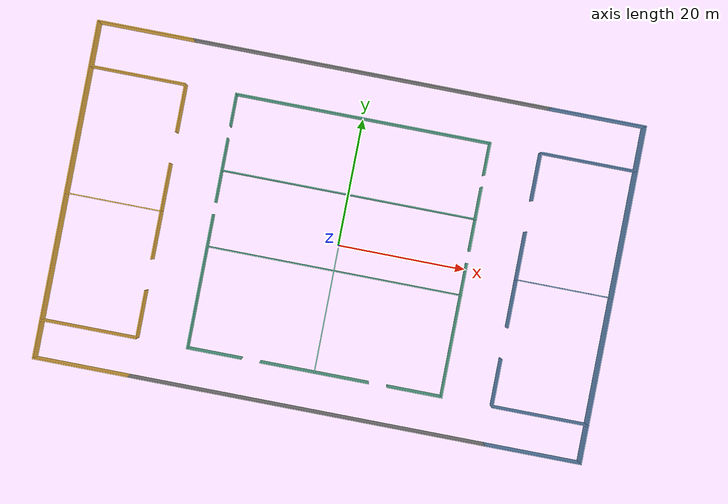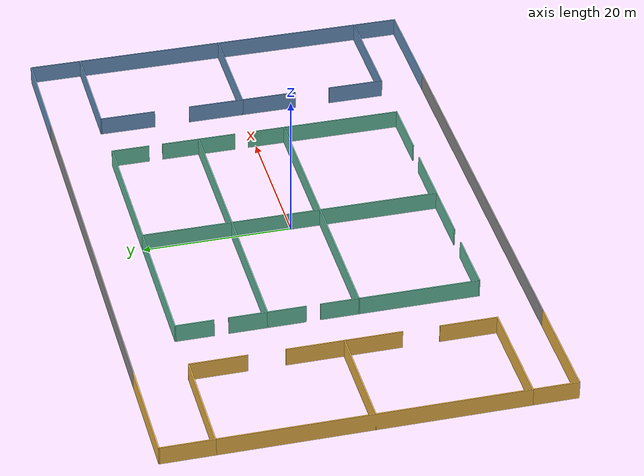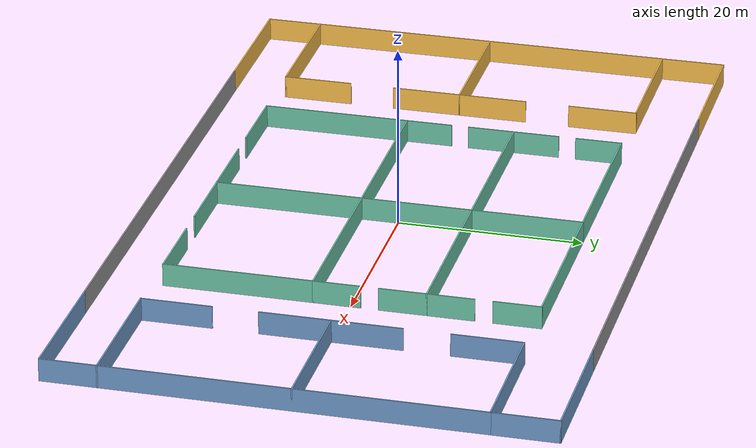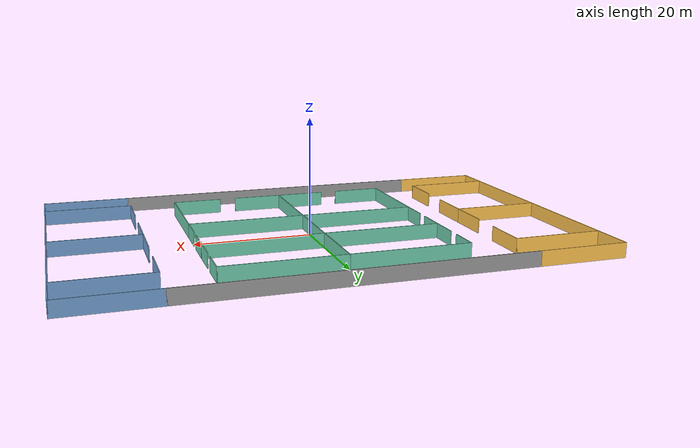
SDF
<?xml version='1.0'?>
<sdf version='1.7'>
  <model name='Lab'>
    <pose>0 0.5 0 0 -0 0</pose>
    <link name='Wall_0'>
      <collision name='Wall_0_Collision'>
        <geometry>
          <box>
            <size>40.15 0.15 2.5</size>
          </box>
        </geometry>
        <pose>0 0 1.25 0 -0 0</pose>
      </collision>
      <visual name='Wall_0_Visual'>
        <pose>0 0 1.25 0 -0 0</pose>
        <geometry>
          <box>
            <size>40.15 0.15 2.5</size>
          </box>
        </geometry>
        <material>
          <script>
            <uri>file://media/materials/scripts/gazebo.material</uri>
            <name>Gazebo/Grey</name>
          </script>
          <ambient>0.435294 0.796078 0.67451 1</ambient>
        </material>
        <meta>
          <layer>0</layer>
        </meta>
      </visual>
      <pose>0 -0.5 0 0 -0 1.5708</pose>
    </link>
    <link name='Wall_11'>
      <collision name='Wall_11_Collision'>
        <geometry>
          <box>
            <size>5.15 0.15 2.5</size>
          </box>
        </geometry>
        <pose>0 0 1.25 0 -0 0</pose>
      </collision>
      <visual name='Wall_11_Visual'>
        <pose>0 0 1.25 0 -0 0</pose>
        <geometry>
          <box>
            <size>5.15 0.15 2.5</size>
          </box>
        </geometry>
        <material>
          <script>
            <uri>file://media/materials/scripts/gazebo.material</uri>
            <name>Gazebo/Grey</name>
          </script>
          <ambient>0.435294 0.796078 0.67451 1</ambient>
        </material>
        <meta>
          <layer>0</layer>
        </meta>
      </visual>
      <pose>-20 17 0 0 -0 -1.5708</pose>
    </link>
    <link name='Wall_14'>
      <collision name='Wall_14_Collision'>
        <geometry>
          <box>
            <size>5.15 0.15 2.5</size>
          </box>
        </geometry>
        <pose>0 0 1.25 0 -0 0</pose>
      </collision>
      <visual name='Wall_14_Visual'>
        <pose>0 0 1.25 0 -0 0</pose>
        <geometry>
          <box>
            <size>5.15 0.15 2.5</size>
          </box>
        </geometry>
        <material>
          <script>
            <uri>file://media/materials/scripts/gazebo.material</uri>
            <name>Gazebo/Grey</name>
          </script>
          <ambient>0.435294 0.796078 0.67451 1</ambient>
        </material>
        <meta>
          <layer>0</layer>
        </meta>
      </visual>
      <pose>-20 10 0 0 -0 -1.5708</pose>
    </link>
    <link name='Wall_16'>
      <collision name='Wall_16_Collision'>
        <geometry>
          <box>
            <size>20.15 0.15 2.5</size>
          </box>
        </geometry>
        <pose>0 0 1.25 0 -0 0</pose>
      </collision>
      <visual name='Wall_16_Visual'>
        <pose>0 0 1.25 0 -0 0</pose>
        <geometry>
          <box>
            <size>20.15 0.15 2.5</size>
          </box>
        </geometry>
        <material>
          <script>
            <uri>file://media/materials/scripts/gazebo.material</uri>
            <name>Gazebo/Grey</name>
          </script>
          <ambient>0.435294 0.796078 0.67451 1</ambient>
        </material>
        <meta>
          <layer>0</layer>
        </meta>
      </visual>
      <pose>-10 7.5 0 0 -0 0</pose>
    </link>
    <link name='Wall_18'>
      <collision name='Wall_18_Collision'>
        <geometry>
          <box>
            <size>5.15 0.15 2.5</size>
          </box>
        </geometry>
        <pose>0 0 1.25 0 -0 0</pose>
      </collision>
      <visual name='Wall_18_Visual'>
        <pose>0 0 1.25 0 -0 0</pose>
        <geometry>
          <box>
            <size>5.15 0.15 2.5</size>
          </box>
        </geometry>
        <material>
          <script>
            <uri>file://media/materials/scripts/gazebo.material</uri>
            <name>Gazebo/Grey</name>
          </script>
          <ambient>0.435294 0.796078 0.67451 1</ambient>
        </material>
        <meta>
          <layer>0</layer>
        </meta>
      </visual>
      <pose>20 17 0 0 -0 -1.5708</pose>
    </link>
    <link name='Wall_20'>
      <collision name='Wall_20_Collision'>
        <geometry>
          <box>
            <size>5.15 0.15 2.5</size>
          </box>
        </geometry>
        <pose>0 0 1.25 0 -0 0</pose>
      </collision>
      <visual name='Wall_20_Visual'>
        <pose>0 0 1.25 0 -0 0</pose>
        <geometry>
          <box>
            <size>5.15 0.15 2.5</size>
          </box>
        </geometry>
        <material>
          <script>
            <uri>file://media/materials/scripts/gazebo.material</uri>
            <name>Gazebo/Grey</name>
          </script>
          <ambient>0.435294 0.796078 0.67451 1</ambient>
        </material>
        <meta>
          <layer>0</layer>
        </meta>
      </visual>
      <pose>20 10 0 0 -0 -1.5708</pose>
    </link>
    <link name='Wall_21'>
      <collision name='Wall_21_Collision'>
        <geometry>
          <box>
            <size>20.15 0.15 2.5</size>
          </box>
        </geometry>
        <pose>0 0 1.25 0 -0 0</pose>
      </collision>
      <visual name='Wall_21_Visual'>
        <pose>0 0 1.25 0 -0 0</pose>
        <geometry>
          <box>
            <size>20.15 0.15 2.5</size>
          </box>
        </geometry>
        <material>
          <script>
            <uri>file://media/materials/scripts/gazebo.material</uri>
            <name>Gazebo/Grey</name>
          </script>
          <ambient>0.435294 0.796078 0.67451 1</ambient>
        </material>
        <meta>
          <layer>0</layer>
        </meta>
      </visual>
      <pose>10 7.5 0 0 -0 3.14159</pose>
    </link>
    <link name='Wall_23'>
      <collision name='Wall_23_Collision'>
        <geometry>
          <box>
            <size>5.15 0.15 2.5</size>
          </box>
        </geometry>
        <pose>0 0 1.25 0 -0 0</pose>
      </collision>
      <visual name='Wall_23_Visual'>
        <pose>0 0 1.25 0 -0 0</pose>
        <geometry>
          <box>
            <size>5.15 0.15 2.5</size>
          </box>
        </geometry>
        <material>
          <script>
            <uri>file://media/materials/scripts/gazebo.material</uri>
            <name>Gazebo/Grey</name>
          </script>
          <ambient>0.435294 0.796078 0.67451 1</ambient>
        </material>
        <meta>
          <layer>0</layer>
        </meta>
      </visual>
      <pose>-20 5 0 0 -0 -1.5708</pose>
    </link>
    <link name='Wall_25'>
      <collision name='Wall_25_Collision'>
        <geometry>
          <box>
            <size>5.15 0.15 2.5</size>
          </box>
        </geometry>
        <pose>0 0 1.25 0 -0 0</pose>
      </collision>
      <visual name='Wall_25_Visual'>
        <pose>0 0 1.25 0 -0 0</pose>
        <geometry>
          <box>
            <size>5.15 0.15 2.5</size>
          </box>
        </geometry>
        <material>
          <script>
            <uri>file://media/materials/scripts/gazebo.material</uri>
            <name>Gazebo/Grey</name>
          </script>
          <ambient>0.435294 0.796078 0.67451 1</ambient>
        </material>
        <meta>
          <layer>0</layer>
        </meta>
      </visual>
      <pose>-20 -2 0 0 -0 -1.5708</pose>
    </link>
    <link name='Wall_26'>
      <collision name='Wall_26_Collision'>
        <geometry>
          <box>
            <size>20.1506 0.15 2.5</size>
          </box>
        </geometry>
        <pose>0 0 1.25 0 -0 0</pose>
      </collision>
      <visual name='Wall_26_Visual'>
        <pose>0 0 1.25 0 -0 0</pose>
        <geometry>
          <box>
            <size>20.1506 0.15 2.5</size>
          </box>
        </geometry>
        <material>
          <script>
            <uri>file://media/materials/scripts/gazebo.material</uri>
            <name>Gazebo/Grey</name>
          </script>
          <ambient>0.435294 0.796078 0.67451 1</ambient>
        </material>
        <meta>
          <layer>0</layer>
        </meta>
      </visual>
      <pose>-10 -4.5 0 0 -0 0</pose>
    </link>
    <link name='Wall_28'>
      <collision name='Wall_28_Collision'>
        <geometry>
          <box>
            <size>20.15 0.15 2.5</size>
          </box>
        </geometry>
        <pose>0 0 1.25 0 -0 0</pose>
      </collision>
      <visual name='Wall_28_Visual'>
        <pose>0 0 1.25 0 -0 0</pose>
        <geometry>
          <box>
            <size>20.15 0.15 2.5</size>
          </box>
        </geometry>
        <material>
          <script>
            <uri>file://media/materials/scripts/gazebo.material</uri>
            <name>Gazebo/Grey</name>
          </script>
          <ambient>0.435294 0.796078 0.67451 1</ambient>
        </material>
        <meta>
          <layer>0</layer>
        </meta>
      </visual>
      <pose>10 -4.5 0 0 -0 0</pose>
    </link>
    <link name='Wall_29'>
      <collision name='Wall_29_Collision'>
        <geometry>
          <box>
            <size>5.15 0.15 2.5</size>
          </box>
        </geometry>
        <pose>0 0 1.25 0 -0 0</pose>
      </collision>
      <visual name='Wall_29_Visual'>
        <pose>0 0 1.25 0 -0 0</pose>
        <geometry>
          <box>
            <size>5.15 0.15 2.5</size>
          </box>
        </geometry>
        <material>
          <script>
            <uri>file://media/materials/scripts/gazebo.material</uri>
            <name>Gazebo/Grey</name>
          </script>
          <ambient>0.435294 0.796078 0.67451 1</ambient>
        </material>
        <meta>
          <layer>0</layer>
        </meta>
      </visual>
      <pose>20 -2 0 0 -0 1.5708</pose>
    </link>
    <link name='Wall_31'>
      <collision name='Wall_31_Collision'>
        <geometry>
          <box>
            <size>5.15 0.15 2.5</size>
          </box>
        </geometry>
        <pose>0 0 1.25 0 -0 0</pose>
      </collision>
      <visual name='Wall_31_Visual'>
        <pose>0 0 1.25 0 -0 0</pose>
        <geometry>
          <box>
            <size>5.15 0.15 2.5</size>
          </box>
        </geometry>
        <material>
          <script>
            <uri>file://media/materials/scripts/gazebo.material</uri>
            <name>Gazebo/Grey</name>
          </script>
          <ambient>0.435294 0.796078 0.67451 1</ambient>
        </material>
        <meta>
          <layer>0</layer>
        </meta>
      </visual>
      <pose>20 5 0 0 -0 1.5708</pose>
    </link>
    <link name='Wall_33'>
      <collision name='Wall_33_Collision'>
        <geometry>
          <box>
            <size>16.15 0.15 2.5</size>
          </box>
        </geometry>
        <pose>0 0 1.25 0 -0 0</pose>
      </collision>
      <visual name='Wall_33_Visual'>
        <pose>0 0 1.25 0 -0 0</pose>
        <geometry>
          <box>
            <size>16.15 0.15 2.5</size>
          </box>
        </geometry>
        <material>
          <script>
            <uri>file://media/materials/scripts/gazebo.material</uri>
            <name>Gazebo/Grey</name>
          </script>
          <ambient>0.435294 0.796078 0.67451 1</ambient>
        </material>
        <meta>
          <layer>0</layer>
        </meta>
      </visual>
      <pose>-20 -12.5 0 0 -0 -1.5708</pose>
    </link>
    <link name='Wall_34'>
      <collision name='Wall_34_Collision'>
        <geometry>
          <box>
            <size>8.65059 0.15 2.5</size>
          </box>
        </geometry>
        <pose>0 0 1.25 0 -0 0</pose>
      </collision>
      <visual name='Wall_34_Visual'>
        <pose>0 0 1.25 0 -0 0</pose>
        <geometry>
          <box>
            <size>8.65059 0.15 2.5</size>
          </box>
        </geometry>
        <material>
          <script>
            <uri>file://media/materials/scripts/gazebo.material</uri>
            <name>Gazebo/Grey</name>
          </script>
          <ambient>0.435294 0.796078 0.67451 1</ambient>
        </material>
        <meta>
          <layer>0</layer>
        </meta>
      </visual>
      <pose>-15.75 -20.5 0 0 -0 0</pose>
    </link>
    <link name='Wall_36'>
      <collision name='Wall_36_Collision'>
        <geometry>
          <box>
            <size>8.65 0.15 2.5</size>
          </box>
        </geometry>
        <pose>0 0 1.25 0 -0 0</pose>
      </collision>
      <visual name='Wall_36_Visual'>
        <pose>0 0 1.25 0 -0 0</pose>
        <geometry>
          <box>
            <size>8.65 0.15 2.5</size>
          </box>
        </geometry>
        <material>
          <script>
            <uri>file://media/materials/scripts/gazebo.material</uri>
            <name>Gazebo/Grey</name>
          </script>
          <ambient>0.435294 0.796078 0.67451 1</ambient>
        </material>
        <meta>
          <layer>0</layer>
        </meta>
      </visual>
      <pose>-4.25 -20.5 0 0 -0 0</pose>
    </link>
    <link name='Wall_38'>
      <collision name='Wall_38_Collision'>
        <geometry>
          <box>
            <size>8.65 0.15 2.5</size>
          </box>
        </geometry>
        <pose>0 0 1.25 0 -0 0</pose>
      </collision>
      <visual name='Wall_38_Visual'>
        <pose>0 0 1.25 0 -0 0</pose>
        <geometry>
          <box>
            <size>8.65 0.15 2.5</size>
          </box>
        </geometry>
        <material>
          <script>
            <uri>file://media/materials/scripts/gazebo.material</uri>
            <name>Gazebo/Grey</name>
          </script>
          <ambient>0.435294 0.796078 0.67451 1</ambient>
        </material>
        <meta>
          <layer>0</layer>
        </meta>
      </visual>
      <pose>4.25 -20.5 0 0 -0 0</pose>
    </link>
    <link name='Wall_40'>
      <collision name='Wall_40_Collision'>
        <geometry>
          <box>
            <size>8.65 0.15 2.5</size>
          </box>
        </geometry>
        <pose>0 0 1.25 0 -0 0</pose>
      </collision>
      <visual name='Wall_40_Visual'>
        <pose>0 0 1.25 0 -0 0</pose>
        <geometry>
          <box>
            <size>8.65 0.15 2.5</size>
          </box>
        </geometry>
        <material>
          <script>
            <uri>file://media/materials/scripts/gazebo.material</uri>
            <name>Gazebo/Grey</name>
          </script>
          <ambient>0.435294 0.796078 0.67451 1</ambient>
        </material>
        <meta>
          <layer>0</layer>
        </meta>
      </visual>
      <pose>15.75 -20.5 0 0 -0 0</pose>
    </link>
    <link name='Wall_41'>
      <collision name='Wall_41_Collision'>
        <geometry>
          <box>
            <size>16.1501 0.15 2.5</size>
          </box>
        </geometry>
        <pose>0 0 1.25 0 -0 0</pose>
      </collision>
      <visual name='Wall_41_Visual'>
        <pose>0 0 1.25 0 -0 0</pose>
        <geometry>
          <box>
            <size>16.1501 0.15 2.5</size>
          </box>
        </geometry>
        <material>
          <script>
            <uri>file://media/materials/scripts/gazebo.material</uri>
            <name>Gazebo/Grey</name>
          </script>
          <ambient>0.435294 0.796078 0.67451 1</ambient>
        </material>
        <meta>
          <layer>0</layer>
        </meta>
      </visual>
      <pose>20 -12.5 0 0 -0 1.5708</pose>
    </link>
    <link name='Wall_47'>
      <collision name='Wall_47_Collision'>
        <geometry>
          <box>
            <size>56.15 0.15 2.5</size>
          </box>
        </geometry>
        <pose>0 0 1.25 0 -0 0</pose>
      </collision>
      <visual name='Wall_47_Visual'>
        <pose>0 0 1.25 0 -0 0</pose>
        <geometry>
          <box>
            <size>56.15 0.15 2.5</size>
          </box>
        </geometry>
        <material>
          <script>
            <uri>file://media/materials/scripts/gazebo.material</uri>
            <name>Gazebo/Grey</name>
          </script>
          <ambient>1 1 1 1</ambient>
        </material>
        <meta>
          <layer>0</layer>
        </meta>
      </visual>
      <pose>0 26.5 0 0 -0 0</pose>
    </link>
    <link name='Wall_49'>
      <collision name='Wall_49_Collision'>
        <geometry>
          <box>
            <size>56.15 0.15 2.5</size>
          </box>
        </geometry>
        <pose>0 0 1.25 0 -0 0</pose>
      </collision>
      <visual name='Wall_49_Visual'>
        <pose>0 0 1.25 0 -0 0</pose>
        <geometry>
          <box>
            <size>56.15 0.15 2.5</size>
          </box>
        </geometry>
        <material>
          <script>
            <uri>file://media/materials/scripts/gazebo.material</uri>
            <name>Gazebo/Grey</name>
          </script>
          <ambient>1 1 1 1</ambient>
        </material>
        <meta>
          <layer>0</layer>
        </meta>
      </visual>
      <pose>0 -26.5 0 0 -0 0</pose>
    </link>
    <link name='Wall_51'>
      <collision name='Wall_51_Collision'>
        <geometry>
          <box>
            <size>15.15 0.15 2.5</size>
          </box>
        </geometry>
        <pose>0 0 1.25 0 -0 0</pose>
      </collision>
      <visual name='Wall_51_Visual'>
        <pose>0 0 1.25 0 -0 0</pose>
        <geometry>
          <box>
            <size>15.15 0.15 2.5</size>
          </box>
        </geometry>
        <material>
          <script>
            <uri>file://media/materials/scripts/gazebo.material</uri>
            <name>Gazebo/Grey</name>
          </script>
          <ambient>1 0.764706 0.305882 1</ambient>
        </material>
        <meta>
          <layer>0</layer>
        </meta>
      </visual>
      <pose>-35.5 26.5 0 0 -0 3.14159</pose>
    </link>
    <link name='Wall_52'>
      <collision name='Wall_52_Collision'>
        <geometry>
          <box>
            <size>7.15 0.15 2.5</size>
          </box>
        </geometry>
        <pose>0 0 1.25 0 -0 0</pose>
      </collision>
      <visual name='Wall_52_Visual'>
        <pose>0 0 1.25 0 -0 0</pose>
        <geometry>
          <box>
            <size>7.15 0.15 2.5</size>
          </box>
        </geometry>
        <material>
          <script>
            <uri>file://media/materials/scripts/gazebo.material</uri>
            <name>Gazebo/Grey</name>
          </script>
          <ambient>1 0.764706 0.305882 1</ambient>
        </material>
        <meta>
          <layer>0</layer>
        </meta>
      </visual>
      <pose>-43 23 0 0 -0 -1.5708</pose>
    </link>
    <link name='Wall_53'>
      <collision name='Wall_53_Collision'>
        <geometry>
          <box>
            <size>15.15 0.15 2.5</size>
          </box>
        </geometry>
        <pose>0 0 1.25 0 -0 0</pose>
      </collision>
      <visual name='Wall_53_Visual'>
        <pose>0 0 1.25 0 -0 0</pose>
        <geometry>
          <box>
            <size>15.15 0.15 2.5</size>
          </box>
        </geometry>
        <material>
          <script>
            <uri>file://media/materials/scripts/gazebo.material</uri>
            <name>Gazebo/Grey</name>
          </script>
          <ambient>1 0.764706 0.305882 1</ambient>
        </material>
        <meta>
          <layer>0</layer>
        </meta>
      </visual>
      <pose>-35.5 19.5 0 0 -0 0</pose>
    </link>
    <link name='Wall_55'>
      <collision name='Wall_55_Collision'>
        <geometry>
          <box>
            <size>15.15 0.15 2.5</size>
          </box>
        </geometry>
        <pose>0 0 1.25 0 -0 0</pose>
      </collision>
      <visual name='Wall_55_Visual'>
        <pose>0 0 1.25 0 -0 0</pose>
        <geometry>
          <box>
            <size>15.15 0.15 2.5</size>
          </box>
        </geometry>
        <material>
          <script>
            <uri>file://media/materials/scripts/gazebo.material</uri>
            <name>Gazebo/Grey</name>
          </script>
          <ambient>1 0.764706 0.305882 1</ambient>
        </material>
        <meta>
          <layer>0</layer>
        </meta>
      </visual>
      <pose>-35.5 -26.5 0 0 -0 3.14159</pose>
    </link>
    <link name='Wall_56'>
      <collision name='Wall_56_Collision'>
        <geometry>
          <box>
            <size>6.15 0.15 2.5</size>
          </box>
        </geometry>
        <pose>0 0 1.25 0 -0 0</pose>
      </collision>
      <visual name='Wall_56_Visual'>
        <pose>0 0 1.25 0 -0 0</pose>
        <geometry>
          <box>
            <size>6.15 0.15 2.5</size>
          </box>
        </geometry>
        <material>
          <script>
            <uri>file://media/materials/scripts/gazebo.material</uri>
            <name>Gazebo/Grey</name>
          </script>
          <ambient>1 0.764706 0.305882 1</ambient>
        </material>
        <meta>
          <layer>0</layer>
        </meta>
      </visual>
      <pose>-43 -23.5 0 0 -0 1.5708</pose>
    </link>
    <link name='Wall_57'>
      <collision name='Wall_57_Collision'>
        <geometry>
          <box>
            <size>15.15 0.15 2.5</size>
          </box>
        </geometry>
        <pose>0 0 1.25 0 -0 0</pose>
      </collision>
      <visual name='Wall_57_Visual'>
        <pose>0 0 1.25 0 -0 0</pose>
        <geometry>
          <box>
            <size>15.15 0.15 2.5</size>
          </box>
        </geometry>
        <material>
          <script>
            <uri>file://media/materials/scripts/gazebo.material</uri>
            <name>Gazebo/Grey</name>
          </script>
          <ambient>1 0.764706 0.305882 1</ambient>
        </material>
        <meta>
          <layer>0</layer>
        </meta>
      </visual>
      <pose>-35.5 -20.5 0 0 -0 0</pose>
    </link>
    <link name='Wall_59'>
      <collision name='Wall_59_Collision'>
        <geometry>
          <box>
            <size>40.15 0.15 2.5</size>
          </box>
        </geometry>
        <pose>0 0 1.25 0 -0 0</pose>
      </collision>
      <visual name='Wall_59_Visual'>
        <pose>0 0 1.25 0 -0 0</pose>
        <geometry>
          <box>
            <size>40.15 0.15 2.5</size>
          </box>
        </geometry>
        <material>
          <script>
            <uri>file://media/materials/scripts/gazebo.material</uri>
            <name>Gazebo/Grey</name>
          </script>
          <ambient>1 0.764706 0.305882 1</ambient>
        </material>
        <meta>
          <layer>0</layer>
        </meta>
      </visual>
      <pose>-43 -0.5 0 0 -0 -1.5708</pose>
    </link>
    <link name='Wall_61'>
      <collision name='Wall_61_Collision'>
        <geometry>
          <box>
            <size>7.65 0.15 2.5</size>
          </box>
        </geometry>
        <pose>0 0 1.25 0 -0 0</pose>
      </collision>
      <visual name='Wall_61_Visual'>
        <pose>0 0 1.25 0 -0 0</pose>
        <geometry>
          <box>
            <size>7.65 0.15 2.5</size>
          </box>
        </geometry>
        <material>
          <script>
            <uri>file://media/materials/scripts/gazebo.material</uri>
            <name>Gazebo/Grey</name>
          </script>
          <ambient>1 0.764706 0.305882 1</ambient>
        </material>
        <meta>
          <layer>0</layer>
        </meta>
      </visual>
      <pose>-28 15.75 0 0 -0 -1.5708</pose>
    </link>
    <link name='Wall_63'>
      <collision name='Wall_63_Collision'>
        <geometry>
          <box>
            <size>7.65 0.15 2.5</size>
          </box>
        </geometry>
        <pose>0 0 1.25 0 -0 0</pose>
      </collision>
      <visual name='Wall_63_Visual'>
        <pose>0 0 1.25 0 -0 0</pose>
        <geometry>
          <box>
            <size>7.65 0.15 2.5</size>
          </box>
        </geometry>
        <material>
          <script>
            <uri>file://media/materials/scripts/gazebo.material</uri>
            <name>Gazebo/Grey</name>
          </script>
          <ambient>1 0.764706 0.305882 1</ambient>
        </material>
        <meta>
          <layer>0</layer>
        </meta>
      </visual>
      <pose>-28 3.25 0 0 -0 -1.5708</pose>
    </link>
    <link name='Wall_64'>
      <collision name='Wall_64_Collision'>
        <geometry>
          <box>
            <size>15.15 0.15 2.5</size>
          </box>
        </geometry>
        <pose>0 0 1.25 0 -0 0</pose>
      </collision>
      <visual name='Wall_64_Visual'>
        <pose>0 0 1.25 0 -0 0</pose>
        <geometry>
          <box>
            <size>15.15 0.15 2.5</size>
          </box>
        </geometry>
        <material>
          <script>
            <uri>file://media/materials/scripts/gazebo.material</uri>
            <name>Gazebo/Grey</name>
          </script>
          <ambient>1 0.764706 0.305882 1</ambient>
        </material>
        <meta>
          <layer>0</layer>
        </meta>
      </visual>
      <pose>-35.5 -0.5 0 0 -0 3.14159</pose>
    </link>
    <link name='Wall_66'>
      <collision name='Wall_66_Collision'>
        <geometry>
          <box>
            <size>7.65 0.15 2.5</size>
          </box>
        </geometry>
        <pose>0 0 1.25 0 -0 0</pose>
      </collision>
      <visual name='Wall_66_Visual'>
        <pose>0 0 1.25 0 -0 0</pose>
        <geometry>
          <box>
            <size>7.65 0.15 2.5</size>
          </box>
        </geometry>
        <material>
          <script>
            <uri>file://media/materials/scripts/gazebo.material</uri>
            <name>Gazebo/Grey</name>
          </script>
          <ambient>1 0.764706 0.305882 1</ambient>
        </material>
        <meta>
          <layer>0</layer>
        </meta>
      </visual>
      <pose>-28 -4.25 0 0 -0 -1.5708</pose>
    </link>
    <link name='Wall_68'>
      <collision name='Wall_68_Collision'>
        <geometry>
          <box>
            <size>7.65 0.15 2.5</size>
          </box>
        </geometry>
        <pose>0 0 1.25 0 -0 0</pose>
      </collision>
      <visual name='Wall_68_Visual'>
        <pose>0 0 1.25 0 -0 0</pose>
        <geometry>
          <box>
            <size>7.65 0.15 2.5</size>
          </box>
        </geometry>
        <material>
          <script>
            <uri>file://media/materials/scripts/gazebo.material</uri>
            <name>Gazebo/Grey</name>
          </script>
          <ambient>1 0.764706 0.305882 1</ambient>
        </material>
        <meta>
          <layer>0</layer>
        </meta>
      </visual>
      <pose>-28 -16.75 0 0 -0 -1.5708</pose>
    </link>
    <link name='Wall_7'>
      <collision name='Wall_7_Collision'>
        <geometry>
          <box>
            <size>20.15 0.15 2.5</size>
          </box>
        </geometry>
        <pose>0 0 1.25 0 -0 0</pose>
      </collision>
      <visual name='Wall_7_Visual'>
        <pose>0 0 1.25 0 -0 0</pose>
        <geometry>
          <box>
            <size>20.15 0.15 2.5</size>
          </box>
        </geometry>
        <material>
          <script>
            <uri>file://media/materials/scripts/gazebo.material</uri>
            <name>Gazebo/Grey</name>
          </script>
          <ambient>0.435294 0.796078 0.67451 1</ambient>
        </material>
        <meta>
          <layer>0</layer>
        </meta>
      </visual>
      <pose>-10 19.5 0 0 -0 3.14159</pose>
    </link>
    <link name='Wall_70'>
      <collision name='Wall_70_Collision'>
        <geometry>
          <box>
            <size>15.15 0.15 2.5</size>
          </box>
        </geometry>
        <pose>0 0 1.25 0 -0 0</pose>
      </collision>
      <visual name='Wall_70_Visual'>
        <pose>0 0 1.25 0 -0 0</pose>
        <geometry>
          <box>
            <size>15.15 0.15 2.5</size>
          </box>
        </geometry>
        <material>
          <script>
            <uri>file://media/materials/scripts/gazebo.material</uri>
            <name>Gazebo/Grey</name>
          </script>
          <ambient>0.447059 0.623529 0.811765 1</ambient>
        </material>
        <meta>
          <layer>0</layer>
        </meta>
      </visual>
      <pose>35.5 26.5 0 0 -0 0</pose>
    </link>
    <link name='Wall_71'>
      <collision name='Wall_71_Collision'>
        <geometry>
          <box>
            <size>7.15 0.15 2.5</size>
          </box>
        </geometry>
        <pose>0 0 1.25 0 -0 0</pose>
      </collision>
      <visual name='Wall_71_Visual'>
        <pose>0 0 1.25 0 -0 0</pose>
        <geometry>
          <box>
            <size>7.15 0.15 2.5</size>
          </box>
        </geometry>
        <material>
          <script>
            <uri>file://media/materials/scripts/gazebo.material</uri>
            <name>Gazebo/Grey</name>
          </script>
          <ambient>0.447059 0.623529 0.811765 1</ambient>
        </material>
        <meta>
          <layer>0</layer>
        </meta>
      </visual>
      <pose>43 23 0 0 -0 -1.5708</pose>
    </link>
    <link name='Wall_72'>
      <collision name='Wall_72_Collision'>
        <geometry>
          <box>
            <size>15.15 0.15 2.5</size>
          </box>
        </geometry>
        <pose>0 0 1.25 0 -0 0</pose>
      </collision>
      <visual name='Wall_72_Visual'>
        <pose>0 0 1.25 0 -0 0</pose>
        <geometry>
          <box>
            <size>15.15 0.15 2.5</size>
          </box>
        </geometry>
        <material>
          <script>
            <uri>file://media/materials/scripts/gazebo.material</uri>
            <name>Gazebo/Grey</name>
          </script>
          <ambient>0.447059 0.623529 0.811765 1</ambient>
        </material>
        <meta>
          <layer>0</layer>
        </meta>
      </visual>
      <pose>35.5 19.5 0 0 -0 3.14159</pose>
    </link>
    <link name='Wall_74'>
      <collision name='Wall_74_Collision'>
        <geometry>
          <box>
            <size>15.15 0.15 2.5</size>
          </box>
        </geometry>
        <pose>0 0 1.25 0 -0 0</pose>
      </collision>
      <visual name='Wall_74_Visual'>
        <pose>0 0 1.25 0 -0 0</pose>
        <geometry>
          <box>
            <size>15.15 0.15 2.5</size>
          </box>
        </geometry>
        <material>
          <script>
            <uri>file://media/materials/scripts/gazebo.material</uri>
            <name>Gazebo/Grey</name>
          </script>
          <ambient>0.447059 0.623529 0.811765 1</ambient>
        </material>
        <meta>
          <layer>0</layer>
        </meta>
      </visual>
      <pose>35.5 -26.5 0 0 -0 0</pose>
    </link>
    <link name='Wall_75'>
      <collision name='Wall_75_Collision'>
        <geometry>
          <box>
            <size>6.15 0.15 2.5</size>
          </box>
        </geometry>
        <pose>0 0 1.25 0 -0 0</pose>
      </collision>
      <visual name='Wall_75_Visual'>
        <pose>0 0 1.25 0 -0 0</pose>
        <geometry>
          <box>
            <size>6.15 0.15 2.5</size>
          </box>
        </geometry>
        <material>
          <script>
            <uri>file://media/materials/scripts/gazebo.material</uri>
            <name>Gazebo/Grey</name>
          </script>
          <ambient>0.447059 0.623529 0.811765 1</ambient>
        </material>
        <meta>
          <layer>0</layer>
        </meta>
      </visual>
      <pose>43 -23.5 0 0 -0 1.5708</pose>
    </link>
    <link name='Wall_76'>
      <collision name='Wall_76_Collision'>
        <geometry>
          <box>
            <size>15.15 0.15 2.5</size>
          </box>
        </geometry>
        <pose>0 0 1.25 0 -0 0</pose>
      </collision>
      <visual name='Wall_76_Visual'>
        <pose>0 0 1.25 0 -0 0</pose>
        <geometry>
          <box>
            <size>15.15 0.15 2.5</size>
          </box>
        </geometry>
        <material>
          <script>
            <uri>file://media/materials/scripts/gazebo.material</uri>
            <name>Gazebo/Grey</name>
          </script>
          <ambient>0.447059 0.623529 0.811765 1</ambient>
        </material>
        <meta>
          <layer>0</layer>
        </meta>
      </visual>
      <pose>35.5 -20.5 0 0 -0 3.14159</pose>
    </link>
    <link name='Wall_78'>
      <collision name='Wall_78_Collision'>
        <geometry>
          <box>
            <size>40.15 0.15 2.5</size>
          </box>
        </geometry>
        <pose>0 0 1.25 0 -0 0</pose>
      </collision>
      <visual name='Wall_78_Visual'>
        <pose>0 0 1.25 0 -0 0</pose>
        <geometry>
          <box>
            <size>40.15 0.15 2.5</size>
          </box>
        </geometry>
        <material>
          <script>
            <uri>file://media/materials/scripts/gazebo.material</uri>
            <name>Gazebo/Grey</name>
          </script>
          <ambient>0.447059 0.623529 0.811765 1</ambient>
        </material>
        <meta>
          <layer>0</layer>
        </meta>
      </visual>
      <pose>43 -0.5 0 0 -0 -1.5708</pose>
    </link>
    <link name='Wall_80'>
      <collision name='Wall_80_Collision'>
        <geometry>
          <box>
            <size>7.65 0.15 2.5</size>
          </box>
        </geometry>
        <pose>0 0 1.25 0 -0 0</pose>
      </collision>
      <visual name='Wall_80_Visual'>
        <pose>0 0 1.25 0 -0 0</pose>
        <geometry>
          <box>
            <size>7.65 0.15 2.5</size>
          </box>
        </geometry>
        <material>
          <script>
            <uri>file://media/materials/scripts/gazebo.material</uri>
            <name>Gazebo/Grey</name>
          </script>
          <ambient>0.447059 0.623529 0.811765 1</ambient>
        </material>
        <meta>
          <layer>0</layer>
        </meta>
      </visual>
      <pose>28 15.75 0 0 -0 -1.5708</pose>
    </link>
    <link name='Wall_82'>
      <collision name='Wall_82_Collision'>
        <geometry>
          <box>
            <size>7.65 0.15 2.5</size>
          </box>
        </geometry>
        <pose>0 0 1.25 0 -0 0</pose>
      </collision>
      <visual name='Wall_82_Visual'>
        <pose>0 0 1.25 0 -0 0</pose>
        <geometry>
          <box>
            <size>7.65 0.15 2.5</size>
          </box>
        </geometry>
        <material>
          <script>
            <uri>file://media/materials/scripts/gazebo.material</uri>
            <name>Gazebo/Grey</name>
          </script>
          <ambient>0.447059 0.623529 0.811765 1</ambient>
        </material>
        <meta>
          <layer>0</layer>
        </meta>
      </visual>
      <pose>28 3.25 0 0 -0 -1.5708</pose>
    </link>
    <link name='Wall_83'>
      <collision name='Wall_83_Collision'>
        <geometry>
          <box>
            <size>15.15 0.15 2.5</size>
          </box>
        </geometry>
        <pose>0 0 1.25 0 -0 0</pose>
      </collision>
      <visual name='Wall_83_Visual'>
        <pose>0 0 1.25 0 -0 0</pose>
        <geometry>
          <box>
            <size>15.15 0.15 2.5</size>
          </box>
        </geometry>
        <material>
          <script>
            <uri>file://media/materials/scripts/gazebo.material</uri>
            <name>Gazebo/Grey</name>
          </script>
          <ambient>0.447059 0.623529 0.811765 1</ambient>
        </material>
        <meta>
          <layer>0</layer>
        </meta>
      </visual>
      <pose>35.5 -0.5 0 0 -0 0</pose>
    </link>
    <link name='Wall_85'>
      <collision name='Wall_85_Collision'>
        <geometry>
          <box>
            <size>7.65 0.15 2.5</size>
          </box>
        </geometry>
        <pose>0 0 1.25 0 -0 0</pose>
      </collision>
      <visual name='Wall_85_Visual'>
        <pose>0 0 1.25 0 -0 0</pose>
        <geometry>
          <box>
            <size>7.65 0.15 2.5</size>
          </box>
        </geometry>
        <material>
          <script>
            <uri>file://media/materials/scripts/gazebo.material</uri>
            <name>Gazebo/Grey</name>
          </script>
          <ambient>0.447059 0.623529 0.811765 1</ambient>
        </material>
        <meta>
          <layer>0</layer>
        </meta>
      </visual>
      <pose>28 -4.25 0 0 -0 -1.5708</pose>
    </link>
    <link name='Wall_87'>
      <collision name='Wall_87_Collision'>
        <geometry>
          <box>
            <size>7.65 0.15 2.5</size>
          </box>
        </geometry>
        <pose>0 0 1.25 0 -0 0</pose>
      </collision>
      <visual name='Wall_87_Visual'>
        <pose>0 0 1.25 0 -0 0</pose>
        <geometry>
          <box>
            <size>7.65 0.15 2.5</size>
          </box>
        </geometry>
        <material>
          <script>
            <uri>file://media/materials/scripts/gazebo.material</uri>
            <name>Gazebo/Grey</name>
          </script>
          <ambient>0.447059 0.623529 0.811765 1</ambient>
        </material>
        <meta>
          <layer>0</layer>
        </meta>
      </visual>
      <pose>28 -16.75 0 0 -0 -1.5708</pose>
    </link>
    <link name='Wall_9'>
      <collision name='Wall_9_Collision'>
        <geometry>
          <box>
            <size>20.15 0.15 2.5</size>
          </box>
        </geometry>
        <pose>0 0 1.25 0 -0 0</pose>
      </collision>
      <visual name='Wall_9_Visual'>
        <pose>0 0 1.25 0 -0 0</pose>
        <geometry>
          <box>
            <size>20.15 0.15 2.5</size>
          </box>
        </geometry>
        <material>
          <script>
            <uri>file://media/materials/scripts/gazebo.material</uri>
            <name>Gazebo/Grey</name>
          </script>
          <ambient>0.435294 0.796078 0.67451 1</ambient>
        </material>
        <meta>
          <layer>0</layer>
        </meta>
      </visual>
      <pose>10 19.5 0 0 -0 0</pose>
    </link>
    <static>1</static>
  </model>
</sdf>
